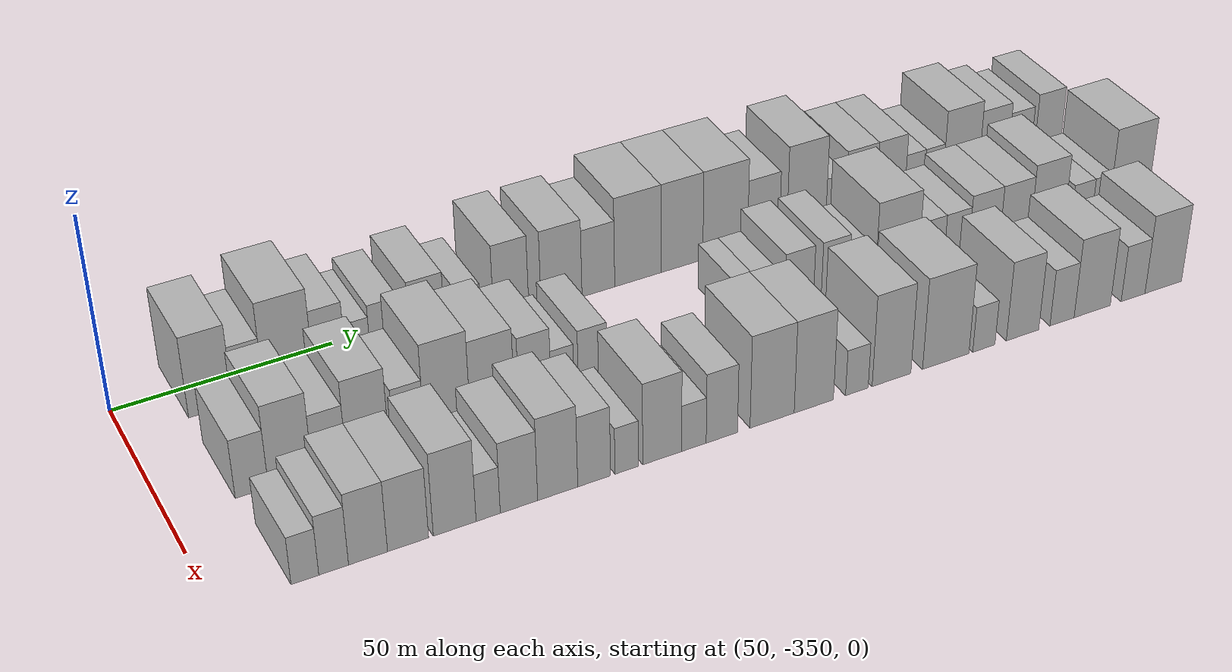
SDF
<sdf version="1.6">
 <world name="default">
  <model name="building_1">
   <static>1</static>
   <pose>50.0000 -331.0890 0 0.000000 0.000000 0.000000</pose>
   <link name="link">
    <pose>0 0 10.50 0 0 0</pose>
    <collision name="collision"><geometry><box><size>20.0000 9.8219 21.0000</size></box></geometry></collision>
    <visual name="visual">
     <cast_shadows>0</cast_shadows>
     <geometry><box><size>20.0000 9.8219 21.0000</size></box></geometry>
     <material>
      <script>
       <uri>model://HANNAS_wall/materials/scripts</uri>
       <uri>model://HANNAS_wall/materials/textures</uri>
       <name>vrc/HANNAS_wall</name>
      </script>
     </material>
    </visual>
   </link>
  </model>
  <model name="building_2">
   <static>1</static>
   <pose>50.0000 -322.7180 0 0.000000 0.000000 0.000000</pose>
   <link name="link">
    <pose>0 0 7.50 0 0 0</pose>
    <collision name="collision"><geometry><box><size>20.0000 6.9202 15.0000</size></box></geometry></collision>
    <visual name="visual">
     <cast_shadows>0</cast_shadows>
     <geometry><box><size>20.0000 6.9202 15.0000</size></box></geometry>
     <material>
      <script>
       <uri>model://HANNAS_wall/materials/scripts</uri>
       <uri>model://HANNAS_wall/materials/textures</uri>
       <name>vrc/HANNAS_wall</name>
      </script>
     </material>
    </visual>
   </link>
  </model>
  <model name="building_3">
   <static>1</static>
   <pose>50.0000 -313.5908 0 0.000000 0.000000 0.000000</pose>
   <link name="link">
    <pose>0 0 12.00 0 0 0</pose>
    <collision name="collision"><geometry><box><size>20.0000 11.3343 24.0000</size></box></geometry></collision>
    <visual name="visual">
     <cast_shadows>0</cast_shadows>
     <geometry><box><size>20.0000 11.3343 24.0000</size></box></geometry>
     <material>
      <script>
       <uri>model://HANNAS_wall/materials/scripts</uri>
       <uri>model://HANNAS_wall/materials/textures</uri>
       <name>vrc/HANNAS_wall</name>
      </script>
     </material>
    </visual>
   </link>
  </model>
  <model name="building_4">
   <static>1</static>
   <pose>50.0000 -304.1958 0 0.000000 0.000000 0.000000</pose>
   <link name="link">
    <pose>0 0 9.00 0 0 0</pose>
    <collision name="collision"><geometry><box><size>20.0000 7.4557 18.0000</size></box></geometry></collision>
    <visual name="visual">
     <cast_shadows>0</cast_shadows>
     <geometry><box><size>20.0000 7.4557 18.0000</size></box></geometry>
     <material>
      <script>
       <uri>model://HANNAS_wall/materials/scripts</uri>
       <uri>model://HANNAS_wall/materials/textures</uri>
       <name>vrc/HANNAS_wall</name>
      </script>
     </material>
    </visual>
   </link>
  </model>
  <model name="building_5">
   <static>1</static>
   <pose>50.0000 -297.6287 0 0.000000 0.000000 0.000000</pose>
   <link name="link">
    <pose>0 0 6.00 0 0 0</pose>
    <collision name="collision"><geometry><box><size>20.0000 5.6784 12.0000</size></box></geometry></collision>
    <visual name="visual">
     <cast_shadows>0</cast_shadows>
     <geometry><box><size>20.0000 5.6784 12.0000</size></box></geometry>
     <material>
      <script>
       <uri>model://HANNAS_wall/materials/scripts</uri>
       <uri>model://HANNAS_wall/materials/textures</uri>
       <name>vrc/HANNAS_wall</name>
      </script>
     </material>
    </visual>
   </link>
  </model>
  <model name="building_6">
   <static>1</static>
   <pose>50.0000 -291.1822 0 0.000000 0.000000 0.000000</pose>
   <link name="link">
    <pose>0 0 7.50 0 0 0</pose>
    <collision name="collision"><geometry><box><size>20.0000 7.2147 15.0000</size></box></geometry></collision>
    <visual name="visual">
     <cast_shadows>0</cast_shadows>
     <geometry><box><size>20.0000 7.2147 15.0000</size></box></geometry>
     <material>
      <script>
       <uri>model://HANNAS_wall/materials/scripts</uri>
       <uri>model://HANNAS_wall/materials/textures</uri>
       <name>vrc/HANNAS_wall</name>
      </script>
     </material>
    </visual>
   </link>
  </model>
  <model name="building_7">
   <static>1</static>
   <pose>50.0000 -281.4151 0 0.000000 0.000000 0.000000</pose>
   <link name="link">
    <pose>0 0 9.00 0 0 0</pose>
    <collision name="collision"><geometry><box><size>20.0000 8.3195 18.0000</size></box></geometry></collision>
    <visual name="visual">
     <cast_shadows>0</cast_shadows>
     <geometry><box><size>20.0000 8.3195 18.0000</size></box></geometry>
     <material>
      <script>
       <uri>model://HANNAS_wall/materials/scripts</uri>
       <uri>model://HANNAS_wall/materials/textures</uri>
       <name>vrc/HANNAS_wall</name>
      </script>
     </material>
    </visual>
   </link>
  </model>
  <model name="building_8">
   <static>1</static>
   <pose>50.0000 -271.4453 0 0.000000 0.000000 0.000000</pose>
   <link name="link">
    <pose>0 0 6.00 0 0 0</pose>
    <collision name="collision"><geometry><box><size>20.0000 5.6200 12.0000</size></box></geometry></collision>
    <visual name="visual">
     <cast_shadows>0</cast_shadows>
     <geometry><box><size>20.0000 5.6200 12.0000</size></box></geometry>
     <material>
      <script>
       <uri>model://HANNAS_wall/materials/scripts</uri>
       <uri>model://HANNAS_wall/materials/textures</uri>
       <name>vrc/HANNAS_wall</name>
      </script>
     </material>
    </visual>
   </link>
  </model>
  <model name="building_9">
   <static>1</static>
   <pose>50.0000 -261.3609 0 0.000000 0.000000 0.000000</pose>
   <link name="link">
    <pose>0 0 10.50 0 0 0</pose>
    <collision name="collision"><geometry><box><size>20.0000 8.5488 21.0000</size></box></geometry></collision>
    <visual name="visual">
     <cast_shadows>0</cast_shadows>
     <geometry><box><size>20.0000 8.5488 21.0000</size></box></geometry>
     <material>
      <script>
       <uri>model://HANNAS_wall/materials/scripts</uri>
       <uri>model://HANNAS_wall/materials/textures</uri>
       <name>vrc/HANNAS_wall</name>
      </script>
     </material>
    </visual>
   </link>
  </model>
  <model name="building_10">
   <static>1</static>
   <pose>50.0000 -249.0100 0 0.000000 0.000000 0.000000</pose>
   <link name="link">
    <pose>0 0 10.50 0 0 0</pose>
    <collision name="collision"><geometry><box><size>20.0000 10.1530 21.0000</size></box></geometry></collision>
    <visual name="visual">
     <cast_shadows>0</cast_shadows>
     <geometry><box><size>20.0000 10.1530 21.0000</size></box></geometry>
     <material>
      <script>
       <uri>model://HANNAS_wall/materials/scripts</uri>
       <uri>model://HANNAS_wall/materials/textures</uri>
       <name>vrc/HANNAS_wall</name>
      </script>
     </material>
    </visual>
   </link>
  </model>
  <model name="building_11">
   <static>1</static>
   <pose>50.0000 -239.8170 0 0.000000 0.000000 0.000000</pose>
   <link name="link">
    <pose>0 0 9.00 0 0 0</pose>
    <collision name="collision"><geometry><box><size>20.0000 8.2330 18.0000</size></box></geometry></collision>
    <visual name="visual">
     <cast_shadows>0</cast_shadows>
     <geometry><box><size>20.0000 8.2330 18.0000</size></box></geometry>
     <material>
      <script>
       <uri>model://HANNAS_wall/materials/scripts</uri>
       <uri>model://HANNAS_wall/materials/textures</uri>
       <name>vrc/HANNAS_wall</name>
      </script>
     </material>
    </visual>
   </link>
  </model>
  <model name="building_12">
   <static>1</static>
   <pose>50.0000 -229.7973 0 0.000000 0.000000 0.000000</pose>
   <link name="link">
    <pose>0 0 12.00 0 0 0</pose>
    <collision name="collision"><geometry><box><size>20.0000 11.8064 24.0000</size></box></geometry></collision>
    <visual name="visual">
     <cast_shadows>0</cast_shadows>
     <geometry><box><size>20.0000 11.8064 24.0000</size></box></geometry>
     <material>
      <script>
       <uri>model://HANNAS_wall/materials/scripts</uri>
       <uri>model://HANNAS_wall/materials/textures</uri>
       <name>vrc/HANNAS_wall</name>
      </script>
     </material>
    </visual>
   </link>
  </model>
  <model name="building_13">
   <static>1</static>
   <pose>50.0000 -218.4713 0 0.000000 0.000000 0.000000</pose>
   <link name="link">
    <pose>0 0 12.00 0 0 0</pose>
    <collision name="collision"><geometry><box><size>20.0000 10.8456 24.0000</size></box></geometry></collision>
    <visual name="visual">
     <cast_shadows>0</cast_shadows>
     <geometry><box><size>20.0000 10.8456 24.0000</size></box></geometry>
     <material>
      <script>
       <uri>model://HANNAS_wall/materials/scripts</uri>
       <uri>model://HANNAS_wall/materials/textures</uri>
       <name>vrc/HANNAS_wall</name>
      </script>
     </material>
    </visual>
   </link>
  </model>
  <model name="building_14">
   <static>1</static>
   <pose>50.0000 -207.1681 0 0.000000 0.000000 0.000000</pose>
   <link name="link">
    <pose>0 0 12.00 0 0 0</pose>
    <collision name="collision"><geometry><box><size>20.0000 11.7610 24.0000</size></box></geometry></collision>
    <visual name="visual">
     <cast_shadows>0</cast_shadows>
     <geometry><box><size>20.0000 11.7610 24.0000</size></box></geometry>
     <material>
      <script>
       <uri>model://HANNAS_wall/materials/scripts</uri>
       <uri>model://HANNAS_wall/materials/textures</uri>
       <name>vrc/HANNAS_wall</name>
      </script>
     </material>
    </visual>
   </link>
  </model>
  <model name="building_15">
   <static>1</static>
   <pose>50.0000 -197.0413 0 0.000000 0.000000 0.000000</pose>
   <link name="link">
    <pose>0 0 9.00 0 0 0</pose>
    <collision name="collision"><geometry><box><size>20.0000 8.4925 18.0000</size></box></geometry></collision>
    <visual name="visual">
     <cast_shadows>0</cast_shadows>
     <geometry><box><size>20.0000 8.4925 18.0000</size></box></geometry>
     <material>
      <script>
       <uri>model://HANNAS_wall/materials/scripts</uri>
       <uri>model://HANNAS_wall/materials/textures</uri>
       <name>vrc/HANNAS_wall</name>
      </script>
     </material>
    </visual>
   </link>
  </model>
  <model name="building_16">
   <static>1</static>
   <pose>50.0000 -185.5123 0 0.000000 0.000000 0.000000</pose>
   <link name="link">
    <pose>0 0 12.00 0 0 0</pose>
    <collision name="collision"><geometry><box><size>20.0000 10.5657 24.0000</size></box></geometry></collision>
    <visual name="visual">
     <cast_shadows>0</cast_shadows>
     <geometry><box><size>20.0000 10.5657 24.0000</size></box></geometry>
     <material>
      <script>
       <uri>model://HANNAS_wall/materials/scripts</uri>
       <uri>model://HANNAS_wall/materials/textures</uri>
       <name>vrc/HANNAS_wall</name>
      </script>
     </material>
    </visual>
   </link>
  </model>
  <model name="building_17">
   <static>1</static>
   <pose>50.0000 -177.5832 0 0.000000 0.000000 0.000000</pose>
   <link name="link">
    <pose>0 0 6.00 0 0 0</pose>
    <collision name="collision"><geometry><box><size>20.0000 5.2924 12.0000</size></box></geometry></collision>
    <visual name="visual">
     <cast_shadows>0</cast_shadows>
     <geometry><box><size>20.0000 5.2924 12.0000</size></box></geometry>
     <material>
      <script>
       <uri>model://HANNAS_wall/materials/scripts</uri>
       <uri>model://HANNAS_wall/materials/textures</uri>
       <name>vrc/HANNAS_wall</name>
      </script>
     </material>
    </visual>
   </link>
  </model>
  <model name="building_18">
   <static>1</static>
   <pose>50.0000 -170.6352 0 0.000000 0.000000 0.000000</pose>
   <link name="link">
    <pose>0 0 9.00 0 0 0</pose>
    <collision name="collision"><geometry><box><size>20.0000 8.6036 18.0000</size></box></geometry></collision>
    <visual name="visual">
     <cast_shadows>0</cast_shadows>
     <geometry><box><size>20.0000 8.6036 18.0000</size></box></geometry>
     <material>
      <script>
       <uri>model://HANNAS_wall/materials/scripts</uri>
       <uri>model://HANNAS_wall/materials/textures</uri>
       <name>vrc/HANNAS_wall</name>
      </script>
     </material>
    </visual>
   </link>
  </model>
  <model name="building_19">
   <static>1</static>
   <pose>50.0000 -162.3650 0 0.000000 0.000000 0.000000</pose>
   <link name="link">
    <pose>0 0 9.00 0 0 0</pose>
    <collision name="collision"><geometry><box><size>20.0000 7.9368 18.0000</size></box></geometry></collision>
    <visual name="visual">
     <cast_shadows>0</cast_shadows>
     <geometry><box><size>20.0000 7.9368 18.0000</size></box></geometry>
     <material>
      <script>
       <uri>model://HANNAS_wall/materials/scripts</uri>
       <uri>model://HANNAS_wall/materials/textures</uri>
       <name>vrc/HANNAS_wall</name>
      </script>
     </material>
    </visual>
   </link>
  </model>
  <model name="building_20">
   <static>1</static>
   <pose>50.0000 -155.6761 0 0.000000 0.000000 0.000000</pose>
   <link name="link">
    <pose>0 0 6.00 0 0 0</pose>
    <collision name="collision"><geometry><box><size>20.0000 5.4409 12.0000</size></box></geometry></collision>
    <visual name="visual">
     <cast_shadows>0</cast_shadows>
     <geometry><box><size>20.0000 5.4409 12.0000</size></box></geometry>
     <material>
      <script>
       <uri>model://HANNAS_wall/materials/scripts</uri>
       <uri>model://HANNAS_wall/materials/textures</uri>
       <name>vrc/HANNAS_wall</name>
      </script>
     </material>
    </visual>
   </link>
  </model>
  <model name="building_21">
   <static>1</static>
   <pose>50.0000 -150.2887 0 0.000000 0.000000 0.000000</pose>
   <link name="link">
    <pose>0 0 6.00 0 0 0</pose>
    <collision name="collision"><geometry><box><size>20.0000 5.3338 12.0000</size></box></geometry></collision>
    <visual name="visual">
     <cast_shadows>0</cast_shadows>
     <geometry><box><size>20.0000 5.3338 12.0000</size></box></geometry>
     <material>
      <script>
       <uri>model://HANNAS_wall/materials/scripts</uri>
       <uri>model://HANNAS_wall/materials/textures</uri>
       <name>vrc/HANNAS_wall</name>
      </script>
     </material>
    </visual>
   </link>
  </model>
  <model name="building_22">
   <static>1</static>
   <pose>50.0000 -142.4901 0 0.000000 0.000000 0.000000</pose>
   <link name="link">
    <pose>0 0 10.50 0 0 0</pose>
    <collision name="collision"><geometry><box><size>20.0000 10.2634 21.0000</size></box></geometry></collision>
    <visual name="visual">
     <cast_shadows>0</cast_shadows>
     <geometry><box><size>20.0000 10.2634 21.0000</size></box></geometry>
     <material>
      <script>
       <uri>model://HANNAS_wall/materials/scripts</uri>
       <uri>model://HANNAS_wall/materials/textures</uri>
       <name>vrc/HANNAS_wall</name>
      </script>
     </material>
    </visual>
   </link>
  </model>
  <model name="building_23">
   <static>1</static>
   <pose>50.0000 -133.1389 0 0.000000 0.000000 0.000000</pose>
   <link name="link">
    <pose>0 0 9.00 0 0 0</pose>
    <collision name="collision"><geometry><box><size>20.0000 8.4390 18.0000</size></box></geometry></collision>
    <visual name="visual">
     <cast_shadows>0</cast_shadows>
     <geometry><box><size>20.0000 8.4390 18.0000</size></box></geometry>
     <material>
      <script>
       <uri>model://HANNAS_wall/materials/scripts</uri>
       <uri>model://HANNAS_wall/materials/textures</uri>
       <name>vrc/HANNAS_wall</name>
      </script>
     </material>
    </visual>
   </link>
  </model>
  <model name="building_24">
   <static>1</static>
   <pose>50.0000 -125.5603 0 0.000000 0.000000 0.000000</pose>
   <link name="link">
    <pose>0 0 7.50 0 0 0</pose>
    <collision name="collision"><geometry><box><size>20.0000 6.7183 15.0000</size></box></geometry></collision>
    <visual name="visual">
     <cast_shadows>0</cast_shadows>
     <geometry><box><size>20.0000 6.7183 15.0000</size></box></geometry>
     <material>
      <script>
       <uri>model://HANNAS_wall/materials/scripts</uri>
       <uri>model://HANNAS_wall/materials/textures</uri>
       <name>vrc/HANNAS_wall</name>
      </script>
     </material>
    </visual>
   </link>
  </model>
  <model name="building_25">
   <static>1</static>
   <pose>50.0000 -117.3013 0 0.000000 0.000000 0.000000</pose>
   <link name="link">
    <pose>0 0 9.00 0 0 0</pose>
    <collision name="collision"><geometry><box><size>20.0000 7.7996 18.0000</size></box></geometry></collision>
    <visual name="visual">
     <cast_shadows>0</cast_shadows>
     <geometry><box><size>20.0000 7.7996 18.0000</size></box></geometry>
     <material>
      <script>
       <uri>model://HANNAS_wall/materials/scripts</uri>
       <uri>model://HANNAS_wall/materials/textures</uri>
       <name>vrc/HANNAS_wall</name>
      </script>
     </material>
    </visual>
   </link>
  </model>
  <model name="building_79">
   <static>1</static>
   <pose>79.0000 -332.4617 0 0.000000 0.000000 0.000000</pose>
   <link name="link">
    <pose>0 0 7.50 0 0 0</pose>
    <collision name="collision"><geometry><box><size>20.0000 7.0767 15.0000</size></box></geometry></collision>
    <visual name="visual">
     <cast_shadows>0</cast_shadows>
     <geometry><box><size>20.0000 7.0767 15.0000</size></box></geometry>
     <material>
      <script>
       <uri>model://HANNAS_wall/materials/scripts</uri>
       <uri>model://HANNAS_wall/materials/textures</uri>
       <name>vrc/HANNAS_wall</name>
      </script>
     </material>
    </visual>
   </link>
  </model>
  <model name="building_80">
   <static>1</static>
   <pose>79.0000 -324.1704 0 0.000000 0.000000 0.000000</pose>
   <link name="link">
    <pose>0 0 10.50 0 0 0</pose>
    <collision name="collision"><geometry><box><size>20.0000 9.5058 21.0000</size></box></geometry></collision>
    <visual name="visual">
     <cast_shadows>0</cast_shadows>
     <geometry><box><size>20.0000 9.5058 21.0000</size></box></geometry>
     <material>
      <script>
       <uri>model://HANNAS_wall/materials/scripts</uri>
       <uri>model://HANNAS_wall/materials/textures</uri>
       <name>vrc/HANNAS_wall</name>
      </script>
     </material>
    </visual>
   </link>
  </model>
  <model name="building_81">
   <static>1</static>
   <pose>79.0000 -315.7226 0 0.000000 0.000000 0.000000</pose>
   <link name="link">
    <pose>0 0 7.50 0 0 0</pose>
    <collision name="collision"><geometry><box><size>20.0000 7.3898 15.0000</size></box></geometry></collision>
    <visual name="visual">
     <cast_shadows>0</cast_shadows>
     <geometry><box><size>20.0000 7.3898 15.0000</size></box></geometry>
     <material>
      <script>
       <uri>model://HANNAS_wall/materials/scripts</uri>
       <uri>model://HANNAS_wall/materials/textures</uri>
       <name>vrc/HANNAS_wall</name>
      </script>
     </material>
    </visual>
   </link>
  </model>
  <model name="building_82">
   <static>1</static>
   <pose>79.0000 -307.2851 0 0.000000 0.000000 0.000000</pose>
   <link name="link">
    <pose>0 0 10.50 0 0 0</pose>
    <collision name="collision"><geometry><box><size>20.0000 9.4853 21.0000</size></box></geometry></collision>
    <visual name="visual">
     <cast_shadows>0</cast_shadows>
     <geometry><box><size>20.0000 9.4853 21.0000</size></box></geometry>
     <material>
      <script>
       <uri>model://HANNAS_wall/materials/scripts</uri>
       <uri>model://HANNAS_wall/materials/textures</uri>
       <name>vrc/HANNAS_wall</name>
      </script>
     </material>
    </visual>
   </link>
  </model>
  <model name="building_83">
   <static>1</static>
   <pose>79.0000 -298.0796 0 0.000000 0.000000 0.000000</pose>
   <link name="link">
    <pose>0 0 7.50 0 0 0</pose>
    <collision name="collision"><geometry><box><size>20.0000 6.9257 15.0000</size></box></geometry></collision>
    <visual name="visual">
     <cast_shadows>0</cast_shadows>
     <geometry><box><size>20.0000 6.9257 15.0000</size></box></geometry>
     <material>
      <script>
       <uri>model://HANNAS_wall/materials/scripts</uri>
       <uri>model://HANNAS_wall/materials/textures</uri>
       <name>vrc/HANNAS_wall</name>
      </script>
     </material>
    </visual>
   </link>
  </model>
  <model name="building_84">
   <static>1</static>
   <pose>79.0000 -289.4142 0 0.000000 0.000000 0.000000</pose>
   <link name="link">
    <pose>0 0 12.00 0 0 0</pose>
    <collision name="collision"><geometry><box><size>20.0000 10.4050 24.0000</size></box></geometry></collision>
    <visual name="visual">
     <cast_shadows>0</cast_shadows>
     <geometry><box><size>20.0000 10.4050 24.0000</size></box></geometry>
     <material>
      <script>
       <uri>model://HANNAS_wall/materials/scripts</uri>
       <uri>model://HANNAS_wall/materials/textures</uri>
       <name>vrc/HANNAS_wall</name>
      </script>
     </material>
    </visual>
   </link>
  </model>
  <model name="building_85">
   <static>1</static>
   <pose>79.0000 -279.1163 0 0.000000 0.000000 0.000000</pose>
   <link name="link">
    <pose>0 0 10.50 0 0 0</pose>
    <collision name="collision"><geometry><box><size>20.0000 10.1908 21.0000</size></box></geometry></collision>
    <visual name="visual">
     <cast_shadows>0</cast_shadows>
     <geometry><box><size>20.0000 10.1908 21.0000</size></box></geometry>
     <material>
      <script>
       <uri>model://HANNAS_wall/materials/scripts</uri>
       <uri>model://HANNAS_wall/materials/textures</uri>
       <name>vrc/HANNAS_wall</name>
      </script>
     </material>
    </visual>
   </link>
  </model>
  <model name="building_86">
   <static>1</static>
   <pose>79.0000 -269.2582 0 0.000000 0.000000 0.000000</pose>
   <link name="link">
    <pose>0 0 9.00 0 0 0</pose>
    <collision name="collision"><geometry><box><size>20.0000 7.5253 18.0000</size></box></geometry></collision>
    <visual name="visual">
     <cast_shadows>0</cast_shadows>
     <geometry><box><size>20.0000 7.5253 18.0000</size></box></geometry>
     <material>
      <script>
       <uri>model://HANNAS_wall/materials/scripts</uri>
       <uri>model://HANNAS_wall/materials/textures</uri>
       <name>vrc/HANNAS_wall</name>
      </script>
     </material>
    </visual>
   </link>
  </model>
  <model name="building_87">
   <static>1</static>
   <pose>79.0000 -262.7782 0 0.000000 0.000000 0.000000</pose>
   <link name="link">
    <pose>0 0 6.00 0 0 0</pose>
    <collision name="collision"><geometry><box><size>20.0000 5.4348 12.0000</size></box></geometry></collision>
    <visual name="visual">
     <cast_shadows>0</cast_shadows>
     <geometry><box><size>20.0000 5.4348 12.0000</size></box></geometry>
     <material>
      <script>
       <uri>model://HANNAS_wall/materials/scripts</uri>
       <uri>model://HANNAS_wall/materials/textures</uri>
       <name>vrc/HANNAS_wall</name>
      </script>
     </material>
    </visual>
   </link>
  </model>
  <model name="building_88">
   <static>1</static>
   <pose>79.0000 -255.6368 0 0.000000 0.000000 0.000000</pose>
   <link name="link">
    <pose>0 0 7.50 0 0 0</pose>
    <collision name="collision"><geometry><box><size>20.0000 6.8481 15.0000</size></box></geometry></collision>
    <visual name="visual">
     <cast_shadows>0</cast_shadows>
     <geometry><box><size>20.0000 6.8481 15.0000</size></box></geometry>
     <material>
      <script>
       <uri>model://HANNAS_wall/materials/scripts</uri>
       <uri>model://HANNAS_wall/materials/textures</uri>
       <name>vrc/HANNAS_wall</name>
      </script>
     </material>
    </visual>
   </link>
  </model>
  <model name="building_89">
   <static>1</static>
   <pose>79.0000 -216.6551 0 0.000000 0.000000 0.000000</pose>
   <link name="link">
    <pose>0 0 6.00 0 0 0</pose>
    <collision name="collision"><geometry><box><size>20.0000 5.0385 12.0000</size></box></geometry></collision>
    <visual name="visual">
     <cast_shadows>0</cast_shadows>
     <geometry><box><size>20.0000 5.0385 12.0000</size></box></geometry>
     <material>
      <script>
       <uri>model://HANNAS_wall/materials/scripts</uri>
       <uri>model://HANNAS_wall/materials/textures</uri>
       <name>vrc/HANNAS_wall</name>
      </script>
     </material>
    </visual>
   </link>
  </model>
  <model name="building_90">
   <static>1</static>
   <pose>79.0000 -211.2802 0 0.000000 0.000000 0.000000</pose>
   <link name="link">
    <pose>0 0 6.00 0 0 0</pose>
    <collision name="collision"><geometry><box><size>20.0000 5.7112 12.0000</size></box></geometry></collision>
    <visual name="visual">
     <cast_shadows>0</cast_shadows>
     <geometry><box><size>20.0000 5.7112 12.0000</size></box></geometry>
     <material>
      <script>
       <uri>model://HANNAS_wall/materials/scripts</uri>
       <uri>model://HANNAS_wall/materials/textures</uri>
       <name>vrc/HANNAS_wall</name>
      </script>
     </material>
    </visual>
   </link>
  </model>
  <model name="building_91">
   <static>1</static>
   <pose>79.0000 -204.6771 0 0.000000 0.000000 0.000000</pose>
   <link name="link">
    <pose>0 0 9.00 0 0 0</pose>
    <collision name="collision"><geometry><box><size>20.0000 7.4951 18.0000</size></box></geometry></collision>
    <visual name="visual">
     <cast_shadows>0</cast_shadows>
     <geometry><box><size>20.0000 7.4951 18.0000</size></box></geometry>
     <material>
      <script>
       <uri>model://HANNAS_wall/materials/scripts</uri>
       <uri>model://HANNAS_wall/materials/textures</uri>
       <name>vrc/HANNAS_wall</name>
      </script>
     </material>
    </visual>
   </link>
  </model>
  <model name="building_92">
   <static>1</static>
   <pose>79.0000 -195.3237 0 0.000000 0.000000 0.000000</pose>
   <link name="link">
    <pose>0 0 9.00 0 0 0</pose>
    <collision name="collision"><geometry><box><size>20.0000 7.2117 18.0000</size></box></geometry></collision>
    <visual name="visual">
     <cast_shadows>0</cast_shadows>
     <geometry><box><size>20.0000 7.2117 18.0000</size></box></geometry>
     <material>
      <script>
       <uri>model://HANNAS_wall/materials/scripts</uri>
       <uri>model://HANNAS_wall/materials/textures</uri>
       <name>vrc/HANNAS_wall</name>
      </script>
     </material>
    </visual>
   </link>
  </model>
  <model name="building_93">
   <static>1</static>
   <pose>79.0000 -187.2715 0 0.000000 0.000000 0.000000</pose>
   <link name="link">
    <pose>0 0 6.00 0 0 0</pose>
    <collision name="collision"><geometry><box><size>20.0000 4.8927 12.0000</size></box></geometry></collision>
    <visual name="visual">
     <cast_shadows>0</cast_shadows>
     <geometry><box><size>20.0000 4.8927 12.0000</size></box></geometry>
     <material>
      <script>
       <uri>model://HANNAS_wall/materials/scripts</uri>
       <uri>model://HANNAS_wall/materials/textures</uri>
       <name>vrc/HANNAS_wall</name>
      </script>
     </material>
    </visual>
   </link>
  </model>
  <model name="building_94">
   <static>1</static>
   <pose>79.0000 -179.0985 0 0.000000 0.000000 0.000000</pose>
   <link name="link">
    <pose>0 0 12.00 0 0 0</pose>
    <collision name="collision"><geometry><box><size>20.0000 11.4534 24.0000</size></box></geometry></collision>
    <visual name="visual">
     <cast_shadows>0</cast_shadows>
     <geometry><box><size>20.0000 11.4534 24.0000</size></box></geometry>
     <material>
      <script>
       <uri>model://HANNAS_wall/materials/scripts</uri>
       <uri>model://HANNAS_wall/materials/textures</uri>
       <name>vrc/HANNAS_wall</name>
      </script>
     </material>
    </visual>
   </link>
  </model>
  <model name="building_95">
   <static>1</static>
   <pose>79.0000 -169.8862 0 0.000000 0.000000 0.000000</pose>
   <link name="link">
    <pose>0 0 7.50 0 0 0</pose>
    <collision name="collision"><geometry><box><size>20.0000 6.9711 15.0000</size></box></geometry></collision>
    <visual name="visual">
     <cast_shadows>0</cast_shadows>
     <geometry><box><size>20.0000 6.9711 15.0000</size></box></geometry>
     <material>
      <script>
       <uri>model://HANNAS_wall/materials/scripts</uri>
       <uri>model://HANNAS_wall/materials/textures</uri>
       <name>vrc/HANNAS_wall</name>
      </script>
     </material>
    </visual>
   </link>
  </model>
  <model name="building_96">
   <static>1</static>
   <pose>79.0000 -163.0501 0 0.000000 0.000000 0.000000</pose>
   <link name="link">
    <pose>0 0 7.50 0 0 0</pose>
    <collision name="collision"><geometry><box><size>20.0000 6.7012 15.0000</size></box></geometry></collision>
    <visual name="visual">
     <cast_shadows>0</cast_shadows>
     <geometry><box><size>20.0000 6.7012 15.0000</size></box></geometry>
     <material>
      <script>
       <uri>model://HANNAS_wall/materials/scripts</uri>
       <uri>model://HANNAS_wall/materials/textures</uri>
       <name>vrc/HANNAS_wall</name>
      </script>
     </material>
    </visual>
   </link>
  </model>
  <model name="building_97">
   <static>1</static>
   <pose>79.0000 -155.4418 0 0.000000 0.000000 0.000000</pose>
   <link name="link">
    <pose>0 0 9.00 0 0 0</pose>
    <collision name="collision"><geometry><box><size>20.0000 8.5153 18.0000</size></box></geometry></collision>
    <visual name="visual">
     <cast_shadows>0</cast_shadows>
     <geometry><box><size>20.0000 8.5153 18.0000</size></box></geometry>
     <material>
      <script>
       <uri>model://HANNAS_wall/materials/scripts</uri>
       <uri>model://HANNAS_wall/materials/textures</uri>
       <name>vrc/HANNAS_wall</name>
      </script>
     </material>
    </visual>
   </link>
  </model>
  <model name="building_98">
   <static>1</static>
   <pose>79.0000 -146.8938 0 0.000000 0.000000 0.000000</pose>
   <link name="link">
    <pose>0 0 9.00 0 0 0</pose>
    <collision name="collision"><geometry><box><size>20.0000 8.5806 18.0000</size></box></geometry></collision>
    <visual name="visual">
     <cast_shadows>0</cast_shadows>
     <geometry><box><size>20.0000 8.5806 18.0000</size></box></geometry>
     <material>
      <script>
       <uri>model://HANNAS_wall/materials/scripts</uri>
       <uri>model://HANNAS_wall/materials/textures</uri>
       <name>vrc/HANNAS_wall</name>
      </script>
     </material>
    </visual>
   </link>
  </model>
  <model name="building_99">
   <static>1</static>
   <pose>79.0000 -137.8157 0 0.000000 0.000000 0.000000</pose>
   <link name="link">
    <pose>0 0 10.50 0 0 0</pose>
    <collision name="collision"><geometry><box><size>20.0000 9.5756 21.0000</size></box></geometry></collision>
    <visual name="visual">
     <cast_shadows>0</cast_shadows>
     <geometry><box><size>20.0000 9.5756 21.0000</size></box></geometry>
     <material>
      <script>
       <uri>model://HANNAS_wall/materials/scripts</uri>
       <uri>model://HANNAS_wall/materials/textures</uri>
       <name>vrc/HANNAS_wall</name>
      </script>
     </material>
    </visual>
   </link>
  </model>
  <model name="building_100">
   <static>1</static>
   <pose>79.0000 -128.0431 0 0.000000 0.000000 0.000000</pose>
   <link name="link">
    <pose>0 0 6.00 0 0 0</pose>
    <collision name="collision"><geometry><box><size>20.0000 5.9696 12.0000</size></box></geometry></collision>
    <visual name="visual">
     <cast_shadows>0</cast_shadows>
     <geometry><box><size>20.0000 5.9696 12.0000</size></box></geometry>
     <material>
      <script>
       <uri>model://HANNAS_wall/materials/scripts</uri>
       <uri>model://HANNAS_wall/materials/textures</uri>
       <name>vrc/HANNAS_wall</name>
      </script>
     </material>
    </visual>
   </link>
  </model>
  <model name="building_101">
   <static>1</static>
   <pose>79.0000 -122.6433 0 0.000000 0.000000 0.000000</pose>
   <link name="link">
    <pose>0 0 6.00 0 0 0</pose>
    <collision name="collision"><geometry><box><size>20.0000 4.8300 12.0000</size></box></geometry></collision>
    <visual name="visual">
     <cast_shadows>0</cast_shadows>
     <geometry><box><size>20.0000 4.8300 12.0000</size></box></geometry>
     <material>
      <script>
       <uri>model://HANNAS_wall/materials/scripts</uri>
       <uri>model://HANNAS_wall/materials/textures</uri>
       <name>vrc/HANNAS_wall</name>
      </script>
     </material>
    </visual>
   </link>
  </model>
  <model name="building_102">
   <static>1</static>
   <pose>79.0000 -114.5155 0 0.000000 0.000000 0.000000</pose>
   <link name="link">
    <pose>0 0 12.00 0 0 0</pose>
    <collision name="collision"><geometry><box><size>20.0000 11.4256 24.0000</size></box></geometry></collision>
    <visual name="visual">
     <cast_shadows>0</cast_shadows>
     <geometry><box><size>20.0000 11.4256 24.0000</size></box></geometry>
     <material>
      <script>
       <uri>model://HANNAS_wall/materials/scripts</uri>
       <uri>model://HANNAS_wall/materials/textures</uri>
       <name>vrc/HANNAS_wall</name>
      </script>
     </material>
    </visual>
   </link>
  </model>
  <model name="building_149">
   <static>1</static>
   <pose>108.0000 -332.1420 0 0.000000 0.000000 0.000000</pose>
   <link name="link">
    <pose>0 0 6.00 0 0 0</pose>
    <collision name="collision"><geometry><box><size>20.0000 5.7160 12.0000</size></box></geometry></collision>
    <visual name="visual">
     <cast_shadows>0</cast_shadows>
     <geometry><box><size>20.0000 5.7160 12.0000</size></box></geometry>
     <material>
      <script>
       <uri>model://HANNAS_wall/materials/scripts</uri>
       <uri>model://HANNAS_wall/materials/textures</uri>
       <name>vrc/HANNAS_wall</name>
      </script>
     </material>
    </visual>
   </link>
  </model>
  <model name="building_150">
   <static>1</static>
   <pose>108.0000 -326.2002 0 0.000000 0.000000 0.000000</pose>
   <link name="link">
    <pose>0 0 7.50 0 0 0</pose>
    <collision name="collision"><geometry><box><size>20.0000 6.1677 15.0000</size></box></geometry></collision>
    <visual name="visual">
     <cast_shadows>0</cast_shadows>
     <geometry><box><size>20.0000 6.1677 15.0000</size></box></geometry>
     <material>
      <script>
       <uri>model://HANNAS_wall/materials/scripts</uri>
       <uri>model://HANNAS_wall/materials/textures</uri>
       <name>vrc/HANNAS_wall</name>
      </script>
     </material>
    </visual>
   </link>
  </model>
  <model name="building_151">
   <static>1</static>
   <pose>108.0000 -319.0283 0 0.000000 0.000000 0.000000</pose>
   <link name="link">
    <pose>0 0 9.00 0 0 0</pose>
    <collision name="collision"><geometry><box><size>20.0000 8.1759 18.0000</size></box></geometry></collision>
    <visual name="visual">
     <cast_shadows>0</cast_shadows>
     <geometry><box><size>20.0000 8.1759 18.0000</size></box></geometry>
     <material>
      <script>
       <uri>model://HANNAS_wall/materials/scripts</uri>
       <uri>model://HANNAS_wall/materials/textures</uri>
       <name>vrc/HANNAS_wall</name>
      </script>
     </material>
    </visual>
   </link>
  </model>
  <model name="building_152">
   <static>1</static>
   <pose>108.0000 -310.5709 0 0.000000 0.000000 0.000000</pose>
   <link name="link">
    <pose>0 0 9.00 0 0 0</pose>
    <collision name="collision"><geometry><box><size>20.0000 8.7389 18.0000</size></box></geometry></collision>
    <visual name="visual">
     <cast_shadows>0</cast_shadows>
     <geometry><box><size>20.0000 8.7389 18.0000</size></box></geometry>
     <material>
      <script>
       <uri>model://HANNAS_wall/materials/scripts</uri>
       <uri>model://HANNAS_wall/materials/textures</uri>
       <name>vrc/HANNAS_wall</name>
      </script>
     </material>
    </visual>
   </link>
  </model>
  <model name="building_153">
   <static>1</static>
   <pose>108.0000 -300.5822 0 0.000000 0.000000 0.000000</pose>
   <link name="link">
    <pose>0 0 10.50 0 0 0</pose>
    <collision name="collision"><geometry><box><size>20.0000 9.2386 21.0000</size></box></geometry></collision>
    <visual name="visual">
     <cast_shadows>0</cast_shadows>
     <geometry><box><size>20.0000 9.2386 21.0000</size></box></geometry>
     <material>
      <script>
       <uri>model://HANNAS_wall/materials/scripts</uri>
       <uri>model://HANNAS_wall/materials/textures</uri>
       <name>vrc/HANNAS_wall</name>
      </script>
     </material>
    </visual>
   </link>
  </model>
  <model name="building_154">
   <static>1</static>
   <pose>108.0000 -293.3202 0 0.000000 0.000000 0.000000</pose>
   <link name="link">
    <pose>0 0 6.00 0 0 0</pose>
    <collision name="collision"><geometry><box><size>20.0000 5.2856 12.0000</size></box></geometry></collision>
    <visual name="visual">
     <cast_shadows>0</cast_shadows>
     <geometry><box><size>20.0000 5.2856 12.0000</size></box></geometry>
     <material>
      <script>
       <uri>model://HANNAS_wall/materials/scripts</uri>
       <uri>model://HANNAS_wall/materials/textures</uri>
       <name>vrc/HANNAS_wall</name>
      </script>
     </material>
    </visual>
   </link>
  </model>
  <model name="building_155">
   <static>1</static>
   <pose>108.0000 -286.5392 0 0.000000 0.000000 0.000000</pose>
   <link name="link">
    <pose>0 0 9.00 0 0 0</pose>
    <collision name="collision"><geometry><box><size>20.0000 8.2763 18.0000</size></box></geometry></collision>
    <visual name="visual">
     <cast_shadows>0</cast_shadows>
     <geometry><box><size>20.0000 8.2763 18.0000</size></box></geometry>
     <material>
      <script>
       <uri>model://HANNAS_wall/materials/scripts</uri>
       <uri>model://HANNAS_wall/materials/textures</uri>
       <name>vrc/HANNAS_wall</name>
      </script>
     </material>
    </visual>
   </link>
  </model>
  <model name="building_156">
   <static>1</static>
   <pose>108.0000 -277.9193 0 0.000000 0.000000 0.000000</pose>
   <link name="link">
    <pose>0 0 10.50 0 0 0</pose>
    <collision name="collision"><geometry><box><size>20.0000 8.9636 21.0000</size></box></geometry></collision>
    <visual name="visual">
     <cast_shadows>0</cast_shadows>
     <geometry><box><size>20.0000 8.9636 21.0000</size></box></geometry>
     <material>
      <script>
       <uri>model://HANNAS_wall/materials/scripts</uri>
       <uri>model://HANNAS_wall/materials/textures</uri>
       <name>vrc/HANNAS_wall</name>
      </script>
     </material>
    </visual>
   </link>
  </model>
  <model name="building_157">
   <static>1</static>
   <pose>108.0000 -269.7148 0 0.000000 0.000000 0.000000</pose>
   <link name="link">
    <pose>0 0 9.00 0 0 0</pose>
    <collision name="collision"><geometry><box><size>20.0000 7.4454 18.0000</size></box></geometry></collision>
    <visual name="visual">
     <cast_shadows>0</cast_shadows>
     <geometry><box><size>20.0000 7.4454 18.0000</size></box></geometry>
     <material>
      <script>
       <uri>model://HANNAS_wall/materials/scripts</uri>
       <uri>model://HANNAS_wall/materials/textures</uri>
       <name>vrc/HANNAS_wall</name>
      </script>
     </material>
    </visual>
   </link>
  </model>
  <model name="building_158">
   <static>1</static>
   <pose>108.0000 -262.3007 0 0.000000 0.000000 0.000000</pose>
   <link name="link">
    <pose>0 0 6.00 0 0 0</pose>
    <collision name="collision"><geometry><box><size>20.0000 5.3828 12.0000</size></box></geometry></collision>
    <visual name="visual">
     <cast_shadows>0</cast_shadows>
     <geometry><box><size>20.0000 5.3828 12.0000</size></box></geometry>
     <material>
      <script>
       <uri>model://HANNAS_wall/materials/scripts</uri>
       <uri>model://HANNAS_wall/materials/textures</uri>
       <name>vrc/HANNAS_wall</name>
      </script>
     </material>
    </visual>
   </link>
  </model>
  <model name="building_159">
   <static>1</static>
   <pose>108.0000 -254.0987 0 0.000000 0.000000 0.000000</pose>
   <link name="link">
    <pose>0 0 10.50 0 0 0</pose>
    <collision name="collision"><geometry><box><size>20.0000 9.0211 21.0000</size></box></geometry></collision>
    <visual name="visual">
     <cast_shadows>0</cast_shadows>
     <geometry><box><size>20.0000 9.0211 21.0000</size></box></geometry>
     <material>
      <script>
       <uri>model://HANNAS_wall/materials/scripts</uri>
       <uri>model://HANNAS_wall/materials/textures</uri>
       <name>vrc/HANNAS_wall</name>
      </script>
     </material>
    </visual>
   </link>
  </model>
  <model name="building_160">
   <static>1</static>
   <pose>108.0000 -246.7072 0 0.000000 0.000000 0.000000</pose>
   <link name="link">
    <pose>0 0 6.00 0 0 0</pose>
    <collision name="collision"><geometry><box><size>20.0000 5.7620 12.0000</size></box></geometry></collision>
    <visual name="visual">
     <cast_shadows>0</cast_shadows>
     <geometry><box><size>20.0000 5.7620 12.0000</size></box></geometry>
     <material>
      <script>
       <uri>model://HANNAS_wall/materials/scripts</uri>
       <uri>model://HANNAS_wall/materials/textures</uri>
       <name>vrc/HANNAS_wall</name>
      </script>
     </material>
    </visual>
   </link>
  </model>
  <model name="building_161">
   <static>1</static>
   <pose>108.0000 -240.1111 0 0.000000 0.000000 0.000000</pose>
   <link name="link">
    <pose>0 0 9.00 0 0 0</pose>
    <collision name="collision"><geometry><box><size>20.0000 7.4302 18.0000</size></box></geometry></collision>
    <visual name="visual">
     <cast_shadows>0</cast_shadows>
     <geometry><box><size>20.0000 7.4302 18.0000</size></box></geometry>
     <material>
      <script>
       <uri>model://HANNAS_wall/materials/scripts</uri>
       <uri>model://HANNAS_wall/materials/textures</uri>
       <name>vrc/HANNAS_wall</name>
      </script>
     </material>
    </visual>
   </link>
  </model>
  <model name="building_162">
   <static>1</static>
   <pose>108.0000 -228.0569 0 0.000000 0.000000 0.000000</pose>
   <link name="link">
    <pose>0 0 12.00 0 0 0</pose>
    <collision name="collision"><geometry><box><size>20.0000 10.6780 24.0000</size></box></geometry></collision>
    <visual name="visual">
     <cast_shadows>0</cast_shadows>
     <geometry><box><size>20.0000 10.6780 24.0000</size></box></geometry>
     <material>
      <script>
       <uri>model://HANNAS_wall/materials/scripts</uri>
       <uri>model://HANNAS_wall/materials/textures</uri>
       <name>vrc/HANNAS_wall</name>
      </script>
     </material>
    </visual>
   </link>
  </model>
  <model name="building_163">
   <static>1</static>
   <pose>108.0000 -217.9005 0 0.000000 0.000000 0.000000</pose>
   <link name="link">
    <pose>0 0 12.00 0 0 0</pose>
    <collision name="collision"><geometry><box><size>20.0000 9.6349 24.0000</size></box></geometry></collision>
    <visual name="visual">
     <cast_shadows>0</cast_shadows>
     <geometry><box><size>20.0000 9.6349 24.0000</size></box></geometry>
     <material>
      <script>
       <uri>model://HANNAS_wall/materials/scripts</uri>
       <uri>model://HANNAS_wall/materials/textures</uri>
       <name>vrc/HANNAS_wall</name>
      </script>
     </material>
    </visual>
   </link>
  </model>
  <model name="building_164">
   <static>1</static>
   <pose>108.0000 -207.2601 0 0.000000 0.000000 0.000000</pose>
   <link name="link">
    <pose>0 0 6.00 0 0 0</pose>
    <collision name="collision"><geometry><box><size>20.0000 5.6460 12.0000</size></box></geometry></collision>
    <visual name="visual">
     <cast_shadows>0</cast_shadows>
     <geometry><box><size>20.0000 5.6460 12.0000</size></box></geometry>
     <material>
      <script>
       <uri>model://HANNAS_wall/materials/scripts</uri>
       <uri>model://HANNAS_wall/materials/textures</uri>
       <name>vrc/HANNAS_wall</name>
      </script>
     </material>
    </visual>
   </link>
  </model>
  <model name="building_165">
   <static>1</static>
   <pose>108.0000 -198.5496 0 0.000000 0.000000 0.000000</pose>
   <link name="link">
    <pose>0 0 12.00 0 0 0</pose>
    <collision name="collision"><geometry><box><size>20.0000 9.7750 24.0000</size></box></geometry></collision>
    <visual name="visual">
     <cast_shadows>0</cast_shadows>
     <geometry><box><size>20.0000 9.7750 24.0000</size></box></geometry>
     <material>
      <script>
       <uri>model://HANNAS_wall/materials/scripts</uri>
       <uri>model://HANNAS_wall/materials/textures</uri>
       <name>vrc/HANNAS_wall</name>
      </script>
     </material>
    </visual>
   </link>
  </model>
  <model name="building_166">
   <static>1</static>
   <pose>108.0000 -184.6894 0 0.000000 0.000000 0.000000</pose>
   <link name="link">
    <pose>0 0 12.00 0 0 0</pose>
    <collision name="collision"><geometry><box><size>20.0000 11.9454 24.0000</size></box></geometry></collision>
    <visual name="visual">
     <cast_shadows>0</cast_shadows>
     <geometry><box><size>20.0000 11.9454 24.0000</size></box></geometry>
     <material>
      <script>
       <uri>model://HANNAS_wall/materials/scripts</uri>
       <uri>model://HANNAS_wall/materials/textures</uri>
       <name>vrc/HANNAS_wall</name>
      </script>
     </material>
    </visual>
   </link>
  </model>
  <model name="building_167">
   <static>1</static>
   <pose>108.0000 -174.8155 0 0.000000 0.000000 0.000000</pose>
   <link name="link">
    <pose>0 0 6.00 0 0 0</pose>
    <collision name="collision"><geometry><box><size>20.0000 5.8025 12.0000</size></box></geometry></collision>
    <visual name="visual">
     <cast_shadows>0</cast_shadows>
     <geometry><box><size>20.0000 5.8025 12.0000</size></box></geometry>
     <material>
      <script>
       <uri>model://HANNAS_wall/materials/scripts</uri>
       <uri>model://HANNAS_wall/materials/textures</uri>
       <name>vrc/HANNAS_wall</name>
      </script>
     </material>
    </visual>
   </link>
  </model>
  <model name="building_168">
   <static>1</static>
   <pose>108.0000 -164.6098 0 0.000000 0.000000 0.000000</pose>
   <link name="link">
    <pose>0 0 10.50 0 0 0</pose>
    <collision name="collision"><geometry><box><size>20.0000 8.6089 21.0000</size></box></geometry></collision>
    <visual name="visual">
     <cast_shadows>0</cast_shadows>
     <geometry><box><size>20.0000 8.6089 21.0000</size></box></geometry>
     <material>
      <script>
       <uri>model://HANNAS_wall/materials/scripts</uri>
       <uri>model://HANNAS_wall/materials/textures</uri>
       <name>vrc/HANNAS_wall</name>
      </script>
     </material>
    </visual>
   </link>
  </model>
  <model name="building_169">
   <static>1</static>
   <pose>108.0000 -154.0557 0 0.000000 0.000000 0.000000</pose>
   <link name="link">
    <pose>0 0 7.50 0 0 0</pose>
    <collision name="collision"><geometry><box><size>20.0000 6.4994 15.0000</size></box></geometry></collision>
    <visual name="visual">
     <cast_shadows>0</cast_shadows>
     <geometry><box><size>20.0000 6.4994 15.0000</size></box></geometry>
     <material>
      <script>
       <uri>model://HANNAS_wall/materials/scripts</uri>
       <uri>model://HANNAS_wall/materials/textures</uri>
       <name>vrc/HANNAS_wall</name>
      </script>
     </material>
    </visual>
   </link>
  </model>
  <model name="building_170">
   <static>1</static>
   <pose>108.0000 -145.8659 0 0.000000 0.000000 0.000000</pose>
   <link name="link">
    <pose>0 0 10.50 0 0 0</pose>
    <collision name="collision"><geometry><box><size>20.0000 9.8801 21.0000</size></box></geometry></collision>
    <visual name="visual">
     <cast_shadows>0</cast_shadows>
     <geometry><box><size>20.0000 9.8801 21.0000</size></box></geometry>
     <material>
      <script>
       <uri>model://HANNAS_wall/materials/scripts</uri>
       <uri>model://HANNAS_wall/materials/textures</uri>
       <name>vrc/HANNAS_wall</name>
      </script>
     </material>
    </visual>
   </link>
  </model>
  <model name="building_171">
   <static>1</static>
   <pose>108.0000 -134.6299 0 0.000000 0.000000 0.000000</pose>
   <link name="link">
    <pose>0 0 7.50 0 0 0</pose>
    <collision name="collision"><geometry><box><size>20.0000 6.5918 15.0000</size></box></geometry></collision>
    <visual name="visual">
     <cast_shadows>0</cast_shadows>
     <geometry><box><size>20.0000 6.5918 15.0000</size></box></geometry>
     <material>
      <script>
       <uri>model://HANNAS_wall/materials/scripts</uri>
       <uri>model://HANNAS_wall/materials/textures</uri>
       <name>vrc/HANNAS_wall</name>
      </script>
     </material>
    </visual>
   </link>
  </model>
  <model name="building_172">
   <static>1</static>
   <pose>108.0000 -126.2135 0 0.000000 0.000000 0.000000</pose>
   <link name="link">
    <pose>0 0 10.50 0 0 0</pose>
    <collision name="collision"><geometry><box><size>20.0000 10.2410 21.0000</size></box></geometry></collision>
    <visual name="visual">
     <cast_shadows>0</cast_shadows>
     <geometry><box><size>20.0000 10.2410 21.0000</size></box></geometry>
     <material>
      <script>
       <uri>model://HANNAS_wall/materials/scripts</uri>
       <uri>model://HANNAS_wall/materials/textures</uri>
       <name>vrc/HANNAS_wall</name>
      </script>
     </material>
    </visual>
   </link>
  </model>
 </world>
</sdf>
